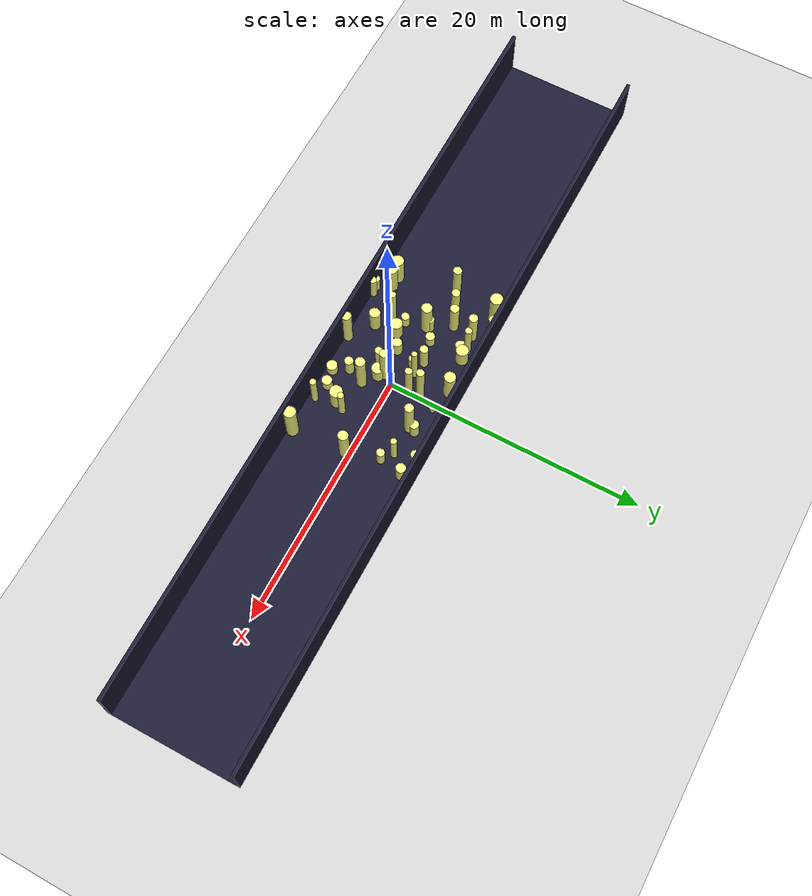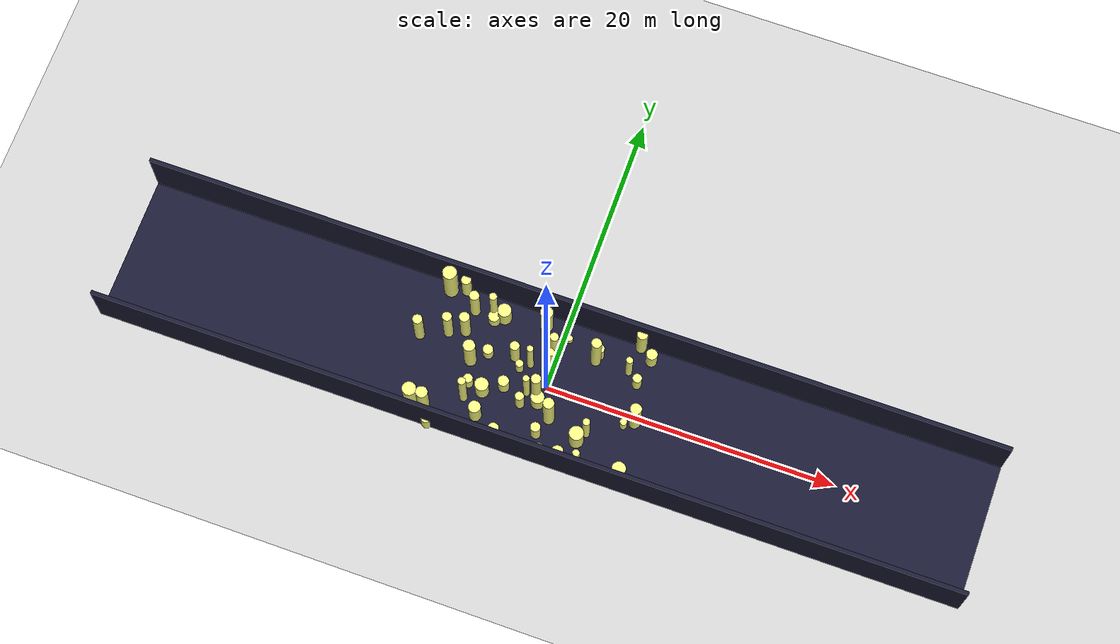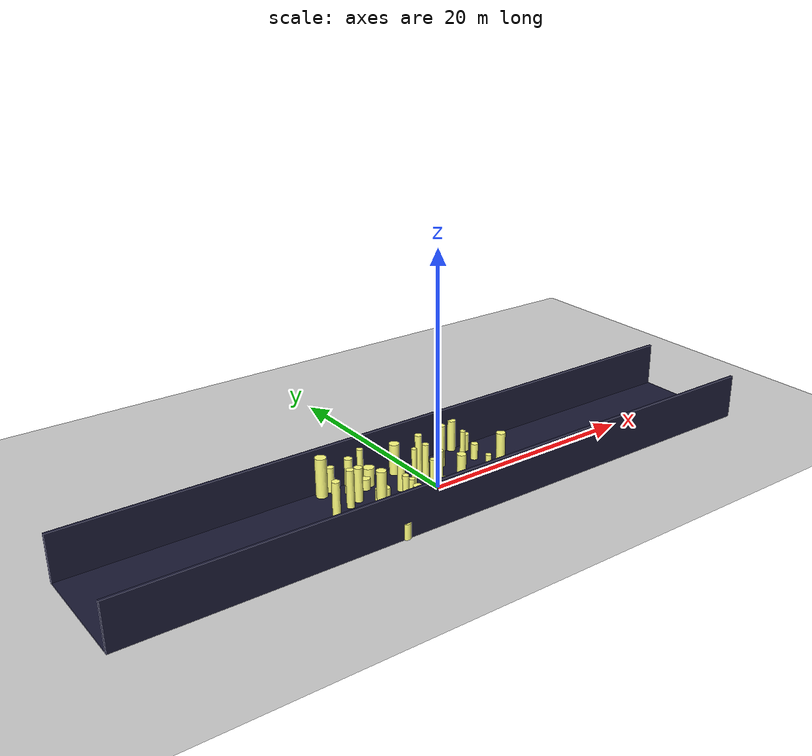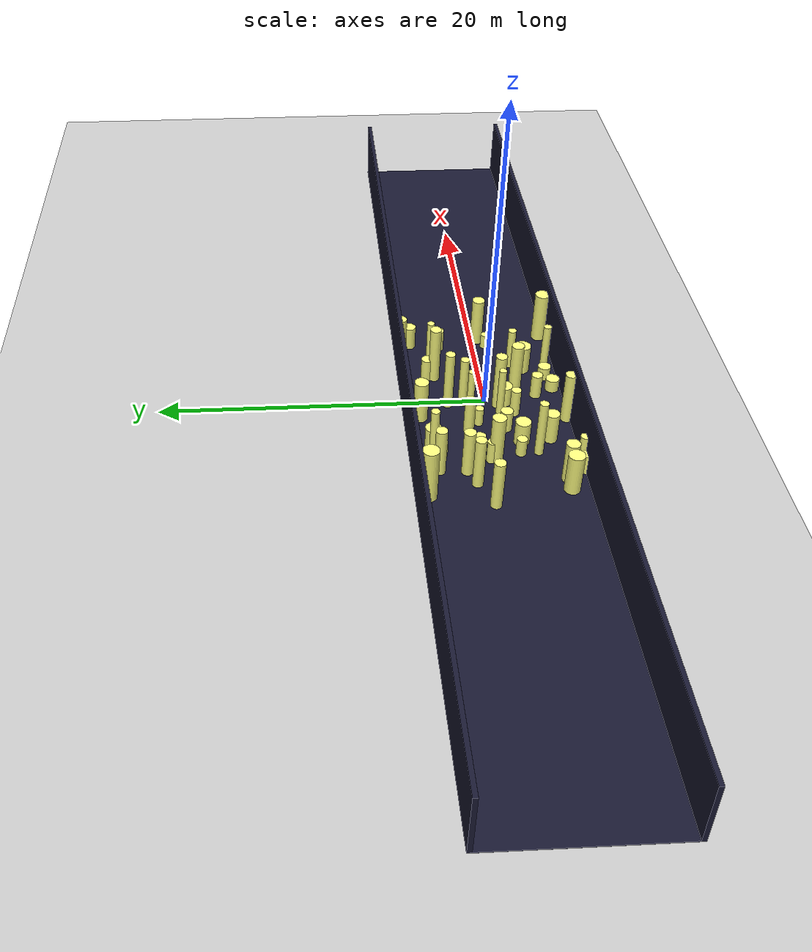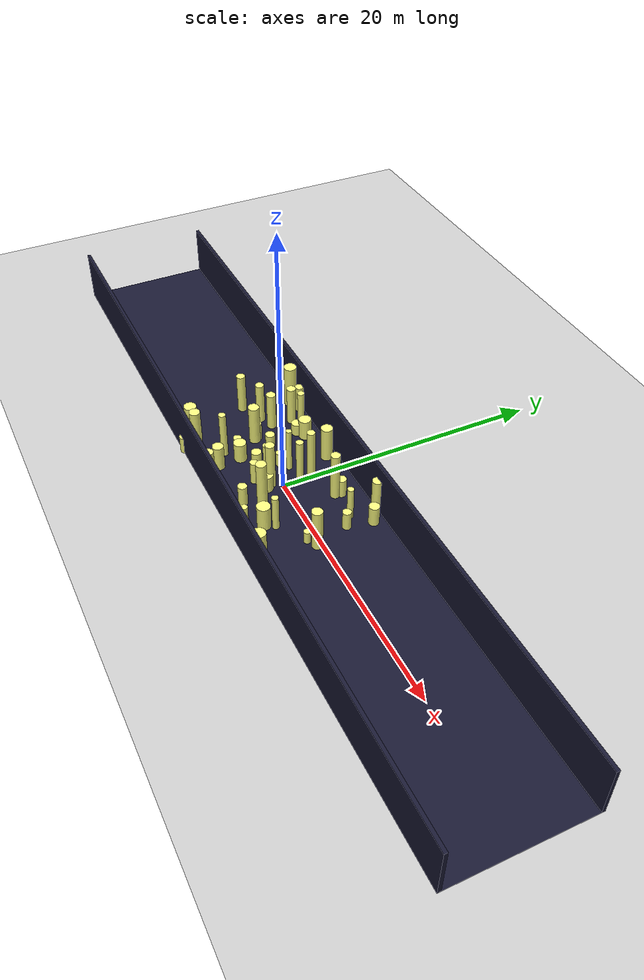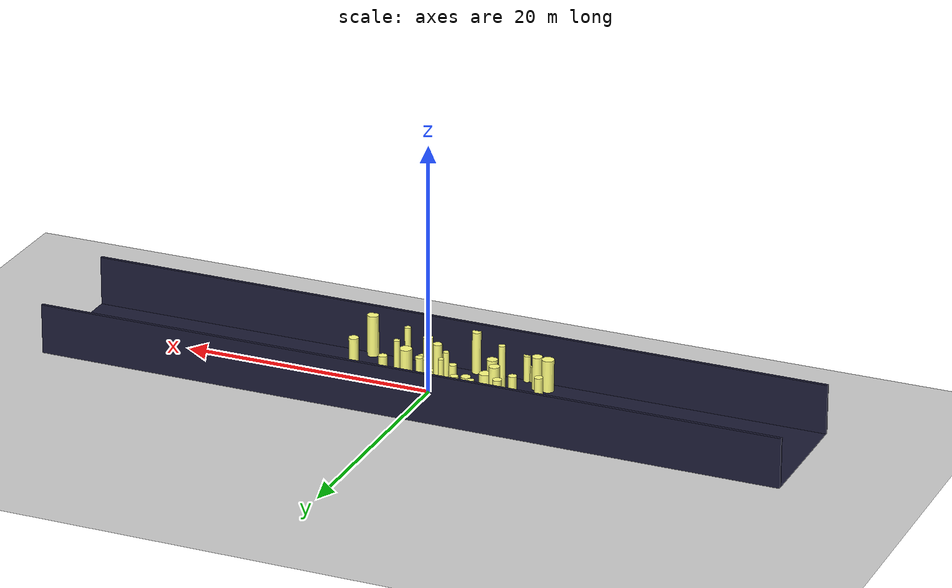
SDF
<sdf version="1.4">
 <world name="default">
  <include><uri>model://ground_plane</uri></include>
  <include><uri>model://sun</uri></include>
  <model name="forest">
   <static>true</static>
   <link name="cylinder0">
    <pose>-0.27596573278064795 2.3027655550596826 1.9662998194130066 0 0 0</pose>
    <visual name="visual">
     <geometry>
      <cylinder><radius>0.29460365191055793</radius><length>3.932599638826013</length></cylinder>
     </geometry>
     <material>
      <ambient>0.6 0.6 0.6 1</ambient>
      <diffuse>1 1 0.5 1</diffuse>
      <specular>0 0 0</specular>
      <emissive>0 0 0 1</emissive>
     </material>
    </visual>
    <collision name="collision">
     <geometry>
      <cylinder><radius>0.29460365191055793</radius><length>3.932599638826013</length></cylinder>
     </geometry>
     <max_contacts>0</max_contacts>
    </collision>
   </link>
   <link name="cylinder3">
    <pose>0.8533443847754789 -1.9828326244018832 1.7870015804718422 0 0 0</pose>
    <visual name="visual">
     <geometry>
      <cylinder><radius>0.378790075126895</radius><length>3.5740031609436844</length></cylinder>
     </geometry>
     <material>
      <ambient>0.6 0.6 0.6 1</ambient>
      <diffuse>1 1 0.5 1</diffuse>
      <specular>0 0 0</specular>
      <emissive>0 0 0 1</emissive>
     </material>
    </visual>
    <collision name="collision">
     <geometry>
      <cylinder><radius>0.378790075126895</radius><length>3.5740031609436844</length></cylinder>
     </geometry>
     <max_contacts>0</max_contacts>
    </collision>
   </link>
   <link name="cylinder14">
    <pose>0.3872426090972496 -3.2432841573307405 0.8264207578981477 0 0 0</pose>
    <visual name="visual">
     <geometry>
      <cylinder><radius>0.3385856604099834</radius><length>1.6528415157962955</length></cylinder>
     </geometry>
     <material>
      <ambient>0.6 0.6 0.6 1</ambient>
      <diffuse>1 1 0.5 1</diffuse>
      <specular>0 0 0</specular>
      <emissive>0 0 0 1</emissive>
     </material>
    </visual>
    <collision name="collision">
     <geometry>
      <cylinder><radius>0.3385856604099834</radius><length>1.6528415157962955</length></cylinder>
     </geometry>
     <max_contacts>0</max_contacts>
    </collision>
   </link>
   <link name="cylinder15">
    <pose>3.587341926778624 -4.363118269159628 1.4793409929411214 0 0 0</pose>
    <visual name="visual">
     <geometry>
      <cylinder><radius>0.24105849808572682</radius><length>2.958681985882243</length></cylinder>
     </geometry>
     <material>
      <ambient>0.6 0.6 0.6 1</ambient>
      <diffuse>1 1 0.5 1</diffuse>
      <specular>0 0 0</specular>
      <emissive>0 0 0 1</emissive>
     </material>
    </visual>
    <collision name="collision">
     <geometry>
      <cylinder><radius>0.24105849808572682</radius><length>2.958681985882243</length></cylinder>
     </geometry>
     <max_contacts>0</max_contacts>
    </collision>
   </link>
   <link name="cylinder20">
    <pose>-6.313498661550838 3.49514028535104 1.575735215364361 0 0 0</pose>
    <visual name="visual">
     <geometry>
      <cylinder><radius>0.3395512921505083</radius><length>3.151470430728722</length></cylinder>
     </geometry>
     <material>
      <ambient>0.6 0.6 0.6 1</ambient>
      <diffuse>1 1 0.5 1</diffuse>
      <specular>0 0 0</specular>
      <emissive>0 0 0 1</emissive>
     </material>
    </visual>
    <collision name="collision">
     <geometry>
      <cylinder><radius>0.3395512921505083</radius><length>3.151470430728722</length></cylinder>
     </geometry>
     <max_contacts>0</max_contacts>
    </collision>
   </link>
   <link name="cylinder22">
    <pose>-5.431169609507229 0.10766228422718438 1.596106110423506 0 0 0</pose>
    <visual name="visual">
     <geometry>
      <cylinder><radius>0.4094059961450005</radius><length>3.192212220847012</length></cylinder>
     </geometry>
     <material>
      <ambient>0.6 0.6 0.6 1</ambient>
      <diffuse>1 1 0.5 1</diffuse>
      <specular>0 0 0</specular>
      <emissive>0 0 0 1</emissive>
     </material>
    </visual>
    <collision name="collision">
     <geometry>
      <cylinder><radius>0.4094059961450005</radius><length>3.192212220847012</length></cylinder>
     </geometry>
     <max_contacts>0</max_contacts>
    </collision>
   </link>
   <link name="cylinder24">
    <pose>3.5151456912194554 -2.1303041103750955 1.3997497912851216 0 0 0</pose>
    <visual name="visual">
     <geometry>
      <cylinder><radius>0.24697764225073554</radius><length>2.799499582570243</length></cylinder>
     </geometry>
     <material>
      <ambient>0.6 0.6 0.6 1</ambient>
      <diffuse>1 1 0.5 1</diffuse>
      <specular>0 0 0</specular>
      <emissive>0 0 0 1</emissive>
     </material>
    </visual>
    <collision name="collision">
     <geometry>
      <cylinder><radius>0.24697764225073554</radius><length>2.799499582570243</length></cylinder>
     </geometry>
     <max_contacts>0</max_contacts>
    </collision>
   </link>
   <link name="cylinder28">
    <pose>-5.5113321428176825 0.3849030072967752 0.7422895267263347 0 0 0</pose>
    <visual name="visual">
     <geometry>
      <cylinder><radius>0.2962670421375333</radius><length>1.4845790534526695</length></cylinder>
     </geometry>
     <material>
      <ambient>0.6 0.6 0.6 1</ambient>
      <diffuse>1 1 0.5 1</diffuse>
      <specular>0 0 0</specular>
      <emissive>0 0 0 1</emissive>
     </material>
    </visual>
    <collision name="collision">
     <geometry>
      <cylinder><radius>0.2962670421375333</radius><length>1.4845790534526695</length></cylinder>
     </geometry>
     <max_contacts>0</max_contacts>
    </collision>
   </link>
   <link name="cylinder29">
    <pose>4.782275414142273 2.8620519904918442 1.3210972901681837 0 0 0</pose>
    <visual name="visual">
     <geometry>
      <cylinder><radius>0.2303400498323811</radius><length>2.6421945803363673</length></cylinder>
     </geometry>
     <material>
      <ambient>0.6 0.6 0.6 1</ambient>
      <diffuse>1 1 0.5 1</diffuse>
      <specular>0 0 0</specular>
      <emissive>0 0 0 1</emissive>
     </material>
    </visual>
    <collision name="collision">
     <geometry>
      <cylinder><radius>0.2303400498323811</radius><length>2.6421945803363673</length></cylinder>
     </geometry>
     <max_contacts>0</max_contacts>
    </collision>
   </link>
   <link name="cylinder30">
    <pose>-6.090910868536813 -4.7910375395340035 1.0784188501266392 0 0 0</pose>
    <visual name="visual">
     <geometry>
      <cylinder><radius>0.27294622840925337</radius><length>2.1568377002532784</length></cylinder>
     </geometry>
     <material>
      <ambient>0.6 0.6 0.6 1</ambient>
      <diffuse>1 1 0.5 1</diffuse>
      <specular>0 0 0</specular>
      <emissive>0 0 0 1</emissive>
     </material>
    </visual>
    <collision name="collision">
     <geometry>
      <cylinder><radius>0.27294622840925337</radius><length>2.1568377002532784</length></cylinder>
     </geometry>
     <max_contacts>0</max_contacts>
    </collision>
   </link>
   <link name="cylinder31">
    <pose>-4.2766366844724395 3.679652418486711 0.8334056321843029 0 0 0</pose>
    <visual name="visual">
     <geometry>
      <cylinder><radius>0.4705615520282012</radius><length>1.6668112643686057</length></cylinder>
     </geometry>
     <material>
      <ambient>0.6 0.6 0.6 1</ambient>
      <diffuse>1 1 0.5 1</diffuse>
      <specular>0 0 0</specular>
      <emissive>0 0 0 1</emissive>
     </material>
    </visual>
    <collision name="collision">
     <geometry>
      <cylinder><radius>0.4705615520282012</radius><length>1.6668112643686057</length></cylinder>
     </geometry>
     <max_contacts>0</max_contacts>
    </collision>
   </link>
   <link name="cylinder37">
    <pose>2.22098658588315 -4.09902437544424 0.4561334338542336 0 0 0</pose>
    <visual name="visual">
     <geometry>
      <cylinder><radius>0.39335598329948684</radius><length>0.9122668677084672</length></cylinder>
     </geometry>
     <material>
      <ambient>0.6 0.6 0.6 1</ambient>
      <diffuse>1 1 0.5 1</diffuse>
      <specular>0 0 0</specular>
      <emissive>0 0 0 1</emissive>
     </material>
    </visual>
    <collision name="collision">
     <geometry>
      <cylinder><radius>0.39335598329948684</radius><length>0.9122668677084672</length></cylinder>
     </geometry>
     <max_contacts>0</max_contacts>
    </collision>
   </link>
   <link name="cylinder38">
    <pose>-1.9714821560423879 -4.702370178172775 1.7159752581711314 0 0 0</pose>
    <visual name="visual">
     <geometry>
      <cylinder><radius>0.3573550583101269</radius><length>3.431950516342263</length></cylinder>
     </geometry>
     <material>
      <ambient>0.6 0.6 0.6 1</ambient>
      <diffuse>1 1 0.5 1</diffuse>
      <specular>0 0 0</specular>
      <emissive>0 0 0 1</emissive>
     </material>
    </visual>
    <collision name="collision">
     <geometry>
      <cylinder><radius>0.3573550583101269</radius><length>3.431950516342263</length></cylinder>
     </geometry>
     <max_contacts>0</max_contacts>
    </collision>
   </link>
   <link name="cylinder40">
    <pose>-3.8046622959511396 -3.3842398450957125 1.008785948485795 0 0 0</pose>
    <visual name="visual">
     <geometry><cylinder><radius>0.4147580997780579</radius><length>2.01757189697159</length></cylinder></geometry>
     <material>
      <ambient>0.6 0.6 0.6 1</ambient>
      <diffuse>1 1 0.5 1</diffuse>
      <specular>0 0 0</specular>
      <emissive>0 0 0 1</emissive>
     </material>
    </visual>
    <collision name="collision">
     <geometry><cylinder><radius>0.4147580997780579</radius><length>2.01757189697159</length></cylinder></geometry>
     <max_contacts>0</max_contacts>
    </collision>
   </link>
   <link name="cylinder42">
    <pose>-4.963759250998667 -2.4985493442247964 1.8681536193753285 0 0 0</pose>
    <visual name="visual">
     <geometry>
      <cylinder><radius>0.2618273209065501</radius><length>3.736307238750657</length></cylinder>
     </geometry>
     <material>
      <ambient>0.6 0.6 0.6 1</ambient>
      <diffuse>1 1 0.5 1</diffuse>
      <specular>0 0 0</specular>
      <emissive>0 0 0 1</emissive>
     </material>
    </visual>
    <collision name="collision">
     <geometry>
      <cylinder><radius>0.2618273209065501</radius><length>3.736307238750657</length></cylinder>
     </geometry>
     <max_contacts>0</max_contacts>
    </collision>
   </link>
   <link name="cylinder46">
    <pose>-7.345873493882234 4.64371863540881 1.11434148683003 0 0 0</pose>
    <visual name="visual">
     <geometry>
      <cylinder><radius>0.32942431847453313</radius><length>2.22868297366006</length></cylinder>
     </geometry>
     <material>
      <ambient>0.6 0.6 0.6 1</ambient>
      <diffuse>1 1 0.5 1</diffuse>
      <specular>0 0 0</specular>
      <emissive>0 0 0 1</emissive>
     </material>
    </visual>
    <collision name="collision">
     <geometry>
      <cylinder><radius>0.32942431847453313</radius><length>2.22868297366006</length></cylinder>
     </geometry>
     <max_contacts>0</max_contacts>
    </collision>
   </link>
   <link name="cylinder47">
    <pose>-5.061527315618932 3.721935583270472 1.7645251837878395 0 0 0</pose>
    <visual name="visual">
     <geometry>
      <cylinder><radius>0.25947089892545744</radius><length>3.529050367575679</length></cylinder>
     </geometry>
     <material>
      <ambient>0.6 0.6 0.6 1</ambient>
      <diffuse>1 1 0.5 1</diffuse>
      <specular>0 0 0</specular>
      <emissive>0 0 0 1</emissive>
     </material>
    </visual>
    <collision name="collision">
     <geometry>
      <cylinder><radius>0.25947089892545744</radius><length>3.529050367575679</length></cylinder>
     </geometry>
     <max_contacts>0</max_contacts>
    </collision>
   </link>
   <link name="cylinder48">
    <pose>-1.5438663993116926 1.1455206450608069 1.765208912737388 0 0 0</pose>
    <visual name="visual">
     <geometry>
      <cylinder><radius>0.21610772324643698</radius><length>3.530417825474776</length></cylinder>
     </geometry>
     <material>
      <ambient>0.6 0.6 0.6 1</ambient>
      <diffuse>1 1 0.5 1</diffuse>
      <specular>0 0 0</specular>
      <emissive>0 0 0 1</emissive>
     </material>
    </visual>
    <collision name="collision">
     <geometry>
      <cylinder><radius>0.21610772324643698</radius><length>3.530417825474776</length></cylinder>
     </geometry>
     <max_contacts>0</max_contacts>
    </collision>
   </link>
   <link name="cylinder53">
    <pose>2.458573111755623 2.858596809954129 1.905493079966019 0 0 0</pose>
    <visual name="visual">
     <geometry>
      <cylinder><radius>0.3431759765896152</radius><length>3.810986159932038</length></cylinder>
     </geometry>
     <material>
      <ambient>0.6 0.6 0.6 1</ambient>
      <diffuse>1 1 0.5 1</diffuse>
      <specular>0 0 0</specular>
      <emissive>0 0 0 1</emissive>
     </material>
    </visual>
    <collision name="collision">
     <geometry>
      <cylinder><radius>0.3431759765896152</radius><length>3.810986159932038</length></cylinder>
     </geometry>
     <max_contacts>0</max_contacts>
    </collision>
   </link>
   <link name="cylinder54">
    <pose>-1.1322312315374674 -0.7774165853125847 1.61868622134119 0 0 0</pose>
    <visual name="visual">
     <geometry>
      <cylinder><radius>0.22260666752828723</radius><length>3.23737244268238</length></cylinder>
     </geometry>
     <material>
      <ambient>0.6 0.6 0.6 1</ambient>
      <diffuse>1 1 0.5 1</diffuse>
      <specular>0 0 0</specular>
      <emissive>0 0 0 1</emissive>
     </material>
    </visual>
    <collision name="collision">
     <geometry>
      <cylinder><radius>0.22260666752828723</radius><length>3.23737244268238</length></cylinder>
     </geometry>
     <max_contacts>0</max_contacts>
    </collision>
   </link>
   <link name="cylinder60">
    <pose>-2.13574960165392 0.6489998864208255 0.6147141040556956 0 0 0</pose>
    <visual name="visual">
     <geometry>
      <cylinder><radius>0.2612646601849798</radius><length>1.2294282081113912</length></cylinder>
     </geometry>
     <material>
      <ambient>0.6 0.6 0.6 1</ambient>
      <diffuse>1 1 0.5 1</diffuse>
      <specular>0 0 0</specular>
      <emissive>0 0 0 1</emissive>
     </material>
    </visual>
    <collision name="collision">
     <geometry>
      <cylinder><radius>0.2612646601849798</radius><length>1.2294282081113912</length></cylinder>
     </geometry>
     <max_contacts>0</max_contacts>
    </collision>
   </link>
   <link name="cylinder66">
    <pose>6.300298029350081 -0.35288475581692325 1.6382654152754557 0 0 0</pose>
    <visual name="visual">
     <geometry>
      <cylinder><radius>0.3880360546565045</radius><length>3.2765308305509113</length></cylinder>
     </geometry>
     <material>
      <ambient>0.6 0.6 0.6 1</ambient>
      <diffuse>1 1 0.5 1</diffuse>
      <specular>0 0 0</specular>
      <emissive>0 0 0 1</emissive>
     </material>
    </visual>
    <collision name="collision">
     <geometry>
      <cylinder><radius>0.3880360546565045</radius><length>3.2765308305509113</length></cylinder>
     </geometry>
     <max_contacts>0</max_contacts>
    </collision>
   </link>
   <link name="cylinder67">
    <pose>-7.4750456176180045 1.4526662061058806 1.6752258363979022 0 0 0</pose>
    <visual name="visual">
     <geometry>
      <cylinder><radius>0.32205068304329376</radius><length>3.3504516727958045</length></cylinder>
     </geometry>
     <material>
      <ambient>0.6 0.6 0.6 1</ambient>
      <diffuse>1 1 0.5 1</diffuse>
      <specular>0 0 0</specular>
      <emissive>0 0 0 1</emissive>
     </material>
    </visual>
    <collision name="collision">
     <geometry>
      <cylinder><radius>0.32205068304329376</radius><length>3.3504516727958045</length></cylinder>
     </geometry>
     <max_contacts>0</max_contacts>
    </collision>
   </link>
   <link name="cylinder68">
    <pose>0.35767220703646885 3.6495828602255713 0.26606501257144244 0 0 0</pose>
    <visual name="visual">
     <geometry>
      <cylinder><radius>0.2071041925124434</radius><length>0.5321300251428849</length></cylinder>
     </geometry>
     <material>
      <ambient>0.6 0.6 0.6 1</ambient>
      <diffuse>1 1 0.5 1</diffuse>
      <specular>0 0 0</specular>
      <emissive>0 0 0 1</emissive>
     </material>
    </visual>
    <collision name="collision">
     <geometry>
      <cylinder><radius>0.2071041925124434</radius><length>0.5321300251428849</length></cylinder>
     </geometry>
     <max_contacts>0</max_contacts>
    </collision>
   </link>
   <link name="cylinder70">
    <pose>5.574126839162247 2.2110773269115347 0.7447027103875199 0 0 0</pose>
    <visual name="visual">
     <geometry>
      <cylinder><radius>0.31297148115333306</radius><length>1.4894054207750398</length></cylinder>
     </geometry>
     <material>
      <ambient>0.6 0.6 0.6 1</ambient>
      <diffuse>1 1 0.5 1</diffuse>
      <specular>0 0 0</specular>
      <emissive>0 0 0 1</emissive>
     </material>
    </visual>
    <collision name="collision">
     <geometry>
      <cylinder><radius>0.31297148115333306</radius><length>1.4894054207750398</length></cylinder>
     </geometry>
     <max_contacts>0</max_contacts>
    </collision>
   </link>
   <link name="cylinder77">
    <pose>-4.464929170977978 0.9323823054205418 0.5276109700520135 0 0 0</pose>
    <visual name="visual">
     <geometry>
      <cylinder><radius>0.3533236156454911</radius><length>1.055221940104027</length></cylinder>
     </geometry>
     <material>
      <ambient>0.6 0.6 0.6 1</ambient>
      <diffuse>1 1 0.5 1</diffuse>
      <specular>0 0 0</specular>
      <emissive>0 0 0 1</emissive>
     </material>
    </visual>
    <collision name="collision">
     <geometry>
      <cylinder><radius>0.3533236156454911</radius><length>1.055221940104027</length></cylinder>
     </geometry>
     <max_contacts>0</max_contacts>
    </collision>
   </link>
   <link name="cylinder78">
    <pose>-0.20533003677898165 -1.1814267811994208 0.684106556259121 0 0 0</pose>
    <visual name="visual">
     <geometry>
      <cylinder><radius>0.4601759545316737</radius><length>1.368213112518242</length></cylinder>
     </geometry>
     <material>
      <ambient>0.6 0.6 0.6 1</ambient>
      <diffuse>1 1 0.5 1</diffuse>
      <specular>0 0 0</specular>
      <emissive>0 0 0 1</emissive>
     </material>
    </visual>
    <collision name="collision">
     <geometry>
      <cylinder><radius>0.4601759545316737</radius><length>1.368213112518242</length></cylinder>
     </geometry>
     <max_contacts>0</max_contacts>
    </collision>
   </link>
   <link name="cylinder79">
    <pose>3.073393834711819 -2.807903192274913 0.9597380945188719 0 0 0</pose>
    <visual name="visual">
     <geometry>
      <cylinder><radius>0.4928499738267403</radius><length>1.9194761890377439</length></cylinder>
     </geometry>
     <material>
      <ambient>0.6 0.6 0.6 1</ambient>
      <diffuse>1 1 0.5 1</diffuse>
      <specular>0 0 0</specular>
      <emissive>0 0 0 1</emissive>
     </material>
    </visual>
    <collision name="collision">
     <geometry>
      <cylinder><radius>0.4928499738267403</radius><length>1.9194761890377439</length></cylinder>
     </geometry>
     <max_contacts>0</max_contacts>
    </collision>
   </link>
   <link name="cylinder81">
    <pose>-2.6949021425784494 -0.9011427375102175 0.7180258042294225 0 0 0</pose>
    <visual name="visual">
     <geometry>
      <cylinder><radius>0.3764301452823545</radius><length>1.436051608458845</length></cylinder>
     </geometry>
     <material>
      <ambient>0.6 0.6 0.6 1</ambient>
      <diffuse>1 1 0.5 1</diffuse>
      <specular>0 0 0</specular>
      <emissive>0 0 0 1</emissive>
     </material>
    </visual>
    <collision name="collision">
     <geometry>
      <cylinder><radius>0.3764301452823545</radius><length>1.436051608458845</length></cylinder>
     </geometry>
     <max_contacts>0</max_contacts>
    </collision>
   </link>
   <link name="cylinder82">
    <pose>0.9794319723424216 -4.381177435413083 0.440281481964797 0 0 0</pose>
    <visual name="visual">
     <geometry>
      <cylinder><radius>0.4172308269165237</radius><length>0.880562963929594</length></cylinder>
     </geometry>
     <material>
      <ambient>0.6 0.6 0.6 1</ambient>
      <diffuse>1 1 0.5 1</diffuse>
      <specular>0 0 0</specular>
      <emissive>0 0 0 1</emissive>
     </material>
    </visual>
    <collision name="collision">
     <geometry>
      <cylinder><radius>0.4172308269165237</radius><length>0.880562963929594</length></cylinder>
     </geometry>
     <max_contacts>0</max_contacts>
    </collision>
   </link>
   <link name="cylinder93">
    <pose>-6.421832280969923 1.904339820848831 1.5206319549675336 0 0 0</pose>
    <visual name="visual">
     <geometry>
      <cylinder><radius>0.3492158327603912</radius><length>3.041263909935067</length></cylinder>
     </geometry>
     <material>
      <ambient>0.6 0.6 0.6 1</ambient>
      <diffuse>1 1 0.5 1</diffuse>
      <specular>0 0 0</specular>
      <emissive>0 0 0 1</emissive>
     </material>
    </visual>
    <collision name="collision">
     <geometry>
      <cylinder><radius>0.3492158327603912</radius><length>3.041263909935067</length></cylinder>
     </geometry>
     <max_contacts>0</max_contacts>
    </collision>
   </link>
   <link name="cylinder94">
    <pose>-1.4467156133626808 4.102352517962988 1.402802430057953 0 0 0</pose>
    <visual name="visual">
     <geometry>
      <cylinder><radius>0.4337722291704366</radius><length>2.805604860115906</length></cylinder>
     </geometry>
     <material>
      <ambient>0.6 0.6 0.6 1</ambient>
      <diffuse>1 1 0.5 1</diffuse>
      <specular>0 0 0</specular>
      <emissive>0 0 0 1</emissive>
     </material>
    </visual>
    <collision name="collision">
     <geometry>
      <cylinder><radius>0.4337722291704366</radius><length>2.805604860115906</length></cylinder>
     </geometry>
     <max_contacts>0</max_contacts>
    </collision>
   </link>
   <link name="cylinder96">
    <pose>5.959971723146772 4.0727285280356895 0.7951254944534036 0 0 0</pose>
    <visual name="visual">
     <geometry>
      <cylinder><radius>0.380986256012672</radius><length>1.5902509889068073</length></cylinder>
     </geometry>
     <material>
      <ambient>0.6 0.6 0.6 1</ambient>
      <diffuse>1 1 0.5 1</diffuse>
      <specular>0 0 0</specular>
      <emissive>0 0 0 1</emissive>
     </material>
    </visual>
    <collision name="collision">
     <geometry>
      <cylinder><radius>0.380986256012672</radius><length>1.5902509889068073</length></cylinder>
     </geometry>
     <max_contacts>0</max_contacts>
    </collision>
   </link>
   <link name="cylinder97">
    <pose>2.5346416959588822 3.3178307788532386 0.7591944391900312 0 0 0</pose>
    <visual name="visual">
     <geometry>
      <cylinder><radius>0.3486552625594238</radius><length>1.5183888783800623</length></cylinder>
     </geometry>
     <material>
      <ambient>0.6 0.6 0.6 1</ambient>
      <diffuse>1 1 0.5 1</diffuse>
      <specular>0 0 0</specular>
      <emissive>0 0 0 1</emissive>
     </material>
    </visual>
    <collision name="collision">
     <geometry>
      <cylinder><radius>0.3486552625594238</radius><length>1.5183888783800623</length></cylinder>
     </geometry>
     <max_contacts>0</max_contacts>
    </collision>
   </link>
   <link name="cylinder102">
    <pose>-4.876329245391382 3.2602933049727376 0.5136819146626024 0 0 0</pose>
    <visual name="visual">
     <geometry>
      <cylinder><radius>0.39487597385749923</radius><length>1.0273638293252048</length></cylinder>
     </geometry>
     <material>
      <ambient>0.6 0.6 0.6 1</ambient>
      <diffuse>1 1 0.5 1</diffuse>
      <specular>0 0 0</specular>
      <emissive>0 0 0 1</emissive>
     </material>
    </visual>
    <collision name="collision">
     <geometry>
      <cylinder><radius>0.39487597385749923</radius><length>1.0273638293252048</length></cylinder>
     </geometry>
     <max_contacts>0</max_contacts>
    </collision>
   </link>
   <link name="cylinder108">
    <pose>-0.20320398357283054 1.3882775579714801 1.7191931434467222 0 0 0</pose>
    <visual name="visual">
     <geometry>
      <cylinder><radius>0.27247559818955647</radius><length>3.4383862868934445</length></cylinder>
     </geometry>
     <material>
      <ambient>0.6 0.6 0.6 1</ambient>
      <diffuse>1 1 0.5 1</diffuse>
      <specular>0 0 0</specular>
      <emissive>0 0 0 1</emissive>
     </material>
    </visual>
    <collision name="collision">
     <geometry>
      <cylinder><radius>0.27247559818955647</radius><length>3.4383862868934445</length></cylinder>
     </geometry>
     <max_contacts>0</max_contacts>
    </collision>
   </link>
   <link name="cylinder113">
    <pose>-6.6512983130535055 -4.937174678788136 0.6616357245952631 0 0 0</pose>
    <visual name="visual">
     <geometry>
      <cylinder><radius>0.36789394797205793</radius><length>1.3232714491905262</length></cylinder>
     </geometry>
     <material>
      <ambient>0.6 0.6 0.6 1</ambient>
      <diffuse>1 1 0.5 1</diffuse>
      <specular>0 0 0</specular>
      <emissive>0 0 0 1</emissive>
     </material>
    </visual>
    <collision name="collision">
     <geometry>
      <cylinder><radius>0.36789394797205793</radius><length>1.3232714491905262</length></cylinder>
     </geometry>
     <max_contacts>0</max_contacts>
    </collision>
   </link>
   <link name="cylinder116">
    <pose>-2.7010602217929787 1.3321774467599088 1.2055936761652877 0 0 0</pose>
    <visual name="visual">
     <geometry>
      <cylinder><radius>0.3218759990839758</radius><length>2.4111873523305754</length></cylinder>
     </geometry>
     <material>
      <ambient>0.6 0.6 0.6 1</ambient>
      <diffuse>1 1 0.5 1</diffuse>
      <specular>0 0 0</specular>
      <emissive>0 0 0 1</emissive>
     </material>
    </visual>
    <collision name="collision">
     <geometry>
      <cylinder><radius>0.3218759990839758</radius><length>2.4111873523305754</length></cylinder>
     </geometry>
     <max_contacts>0</max_contacts>
    </collision>
   </link>
   <link name="cylinder118">
    <pose>-3.955854165925654 -1.6533701475558358 0.8047253376440907 0 0 0</pose>
    <visual name="visual">
     <geometry>
      <cylinder><radius>0.46908089838993666</radius><length>1.6094506752881814</length></cylinder>
     </geometry>
     <material>
      <ambient>0.6 0.6 0.6 1</ambient>
      <diffuse>1 1 0.5 1</diffuse>
      <specular>0 0 0</specular>
      <emissive>0 0 0 1</emissive>
     </material>
    </visual>
    <collision name="collision">
     <geometry>
      <cylinder><radius>0.46908089838993666</radius><length>1.6094506752881814</length></cylinder>
     </geometry>
     <max_contacts>0</max_contacts>
    </collision>
   </link>
   <link name="cylinder119">
    <pose>-8.188036251541497 -3.817979359215621 1.3103191991513643 0 0 0</pose>
    <visual name="visual">
     <geometry>
      <cylinder><radius>0.4759550984937448</radius><length>2.6206383983027286</length></cylinder>
     </geometry>
     <material>
      <ambient>0.6 0.6 0.6 1</ambient>
      <diffuse>1 1 0.5 1</diffuse>
      <specular>0 0 0</specular>
      <emissive>0 0 0 1</emissive>
     </material>
    </visual>
    <collision name="collision">
     <geometry>
      <cylinder><radius>0.4759550984937448</radius><length>2.6206383983027286</length></cylinder>
     </geometry>
     <max_contacts>0</max_contacts>
    </collision>
   </link>
   <link name="cylinder120">
    <pose>-7.317132745200709 -3.792949786626685 1.355027259228058 0 0 0</pose>
    <visual name="visual">
     <geometry><cylinder><radius>0.402990476792549</radius><length>2.710054518456116</length></cylinder></geometry>
     <material>
      <ambient>0.6 0.6 0.6 1</ambient>
      <diffuse>1 1 0.5 1</diffuse>
      <specular>0 0 0</specular>
      <emissive>0 0 0 1</emissive>
     </material>
    </visual>
    <collision name="collision">
     <geometry><cylinder><radius>0.402990476792549</radius><length>2.710054518456116</length></cylinder></geometry>
     <max_contacts>0</max_contacts>
    </collision>
   </link>
   <link name="cylinder130">
    <pose>-9.254398361874722 0.6704895347269888 1.610703955668252 0 0 0</pose>
    <visual name="visual">
     <geometry>
      <cylinder><radius>0.3320934720388215</radius><length>3.221407911336504</length></cylinder>
     </geometry>
     <material>
      <ambient>0.6 0.6 0.6 1</ambient>
      <diffuse>1 1 0.5 1</diffuse>
      <specular>0 0 0</specular>
      <emissive>0 0 0 1</emissive>
     </material>
    </visual>
    <collision name="collision">
     <geometry>
      <cylinder><radius>0.3320934720388215</radius><length>3.221407911336504</length></cylinder>
     </geometry>
     <max_contacts>0</max_contacts>
    </collision>
   </link>
   <link name="cylinder134">
    <pose>-4.991888635946811 -1.440313777639041 0.5921987869990618 0 0 0</pose>
    <visual name="visual">
     <geometry>
      <cylinder><radius>0.3153139026965055</radius><length>1.1843975739981236</length></cylinder>
     </geometry>
     <material>
      <ambient>0.6 0.6 0.6 1</ambient>
      <diffuse>1 1 0.5 1</diffuse>
      <specular>0 0 0</specular>
      <emissive>0 0 0 1</emissive>
     </material>
    </visual>
    <collision name="collision">
     <geometry>
      <cylinder><radius>0.3153139026965055</radius><length>1.1843975739981236</length></cylinder>
     </geometry>
     <max_contacts>0</max_contacts>
    </collision>
   </link>
   <link name="cylinder135">
    <pose>-0.4528127453605464 -0.7566797337952833 1.8902565552873334 0 0 0</pose>
    <visual name="visual">
     <geometry>
      <cylinder><radius>0.3410631825809377</radius><length>3.7805131105746668</length></cylinder>
     </geometry>
     <material>
      <ambient>0.6 0.6 0.6 1</ambient>
      <diffuse>1 1 0.5 1</diffuse>
      <specular>0 0 0</specular>
      <emissive>0 0 0 1</emissive>
     </material>
    </visual>
    <collision name="collision">
     <geometry>
      <cylinder><radius>0.3410631825809377</radius><length>3.7805131105746668</length></cylinder>
     </geometry>
     <max_contacts>0</max_contacts>
    </collision>
   </link>
   <link name="cylinder140">
    <pose>5.025964974886627 4.746068617976309 1.4334421445880174 0 0 0</pose>
    <visual name="visual">
     <geometry>
      <cylinder><radius>0.35694954847004995</radius><length>2.866884289176035</length></cylinder>
     </geometry>
     <material>
      <ambient>0.6 0.6 0.6 1</ambient>
      <diffuse>1 1 0.5 1</diffuse>
      <specular>0 0 0</specular>
      <emissive>0 0 0 1</emissive>
     </material>
    </visual>
    <collision name="collision">
     <geometry>
      <cylinder><radius>0.35694954847004995</radius><length>2.866884289176035</length></cylinder>
     </geometry>
     <max_contacts>0</max_contacts>
    </collision>
   </link>
   <link name="cylinder141">
    <pose>5.660017852902914 -0.7891580256273283 0.5110132822110446 0 0 0</pose>
    <visual name="visual">
     <geometry>
      <cylinder><radius>0.2390690217975223</radius><length>1.0220265644220892</length></cylinder>
     </geometry>
     <material>
      <ambient>0.6 0.6 0.6 1</ambient>
      <diffuse>1 1 0.5 1</diffuse>
      <specular>0 0 0</specular>
      <emissive>0 0 0 1</emissive>
     </material>
    </visual>
    <collision name="collision">
     <geometry>
      <cylinder><radius>0.2390690217975223</radius><length>1.0220265644220892</length></cylinder>
     </geometry>
     <max_contacts>0</max_contacts>
    </collision>
   </link>
   <link name="cylinder142">
    <pose>-8.351379570967872 4.344632672739051 1.7523340911181562 0 0 0</pose>
    <visual name="visual">
     <geometry>
      <cylinder><radius>0.48325551699206765</radius><length>3.5046681822363124</length></cylinder>
     </geometry>
     <material>
      <ambient>0.6 0.6 0.6 1</ambient>
      <diffuse>1 1 0.5 1</diffuse>
      <specular>0 0 0</specular>
      <emissive>0 0 0 1</emissive>
     </material>
    </visual>
    <collision name="collision">
     <geometry>
      <cylinder><radius>0.48325551699206765</radius><length>3.5046681822363124</length></cylinder>
     </geometry>
     <max_contacts>0</max_contacts>
    </collision>
   </link>
   <link name="cylinder143">
    <pose>6.560199547206981 -4.534994942495531 1.699940250791563 0 0 0</pose>
    <visual name="visual">
     <geometry>
      <cylinder><radius>0.4594532128695059</radius><length>3.399880501583126</length></cylinder>
     </geometry>
     <material>
      <ambient>0.6 0.6 0.6 1</ambient>
      <diffuse>1 1 0.5 1</diffuse>
      <specular>0 0 0</specular>
      <emissive>0 0 0 1</emissive>
     </material>
    </visual>
    <collision name="collision">
     <geometry>
      <cylinder><radius>0.4594532128695059</radius><length>3.399880501583126</length></cylinder>
     </geometry>
     <max_contacts>0</max_contacts>
    </collision>
   </link>
   <link name="cylinder147">
    <pose>-1.2964439783064492 -1.6573335281685173 0.92735483571683 0 0 0</pose>
    <visual name="visual">
     <geometry>
      <cylinder><radius>0.30177130759064325</radius><length>1.85470967143366</length></cylinder>
     </geometry>
     <material>
      <ambient>0.6 0.6 0.6 1</ambient>
      <diffuse>1 1 0.5 1</diffuse>
      <specular>0 0 0</specular>
      <emissive>0 0 0 1</emissive>
     </material>
    </visual>
    <collision name="collision">
     <geometry>
      <cylinder><radius>0.30177130759064325</radius><length>1.85470967143366</length></cylinder>
     </geometry>
     <max_contacts>0</max_contacts>
    </collision>
   </link>
   <link name="cube0">
    <pose>0 5.0 2.0 0 0 0</pose>
    <visual name="visual">
     <geometry><box><size>60.0 0.25 4.0</size></box></geometry>
     <material>
      <ambient>0.1 0.1 0.1 1</ambient>
      <diffuse>0.1 0.1 0.2 1</diffuse>
      <specular>0 0 0</specular>
      <emissive>0 0 0 1</emissive>
     </material>
    </visual>
    <collision name="collision">
     <geometry><box><size>60.0 0.25 4.0</size></box></geometry>
     <max_contacts>0</max_contacts>
    </collision>
   </link>
   <link name="cube1">
    <pose>0 -5.0 2.0 0 0 0</pose>
    <visual name="visual">
     <geometry><box><size>60.0 0.25 4.0</size></box></geometry>
     <material>
      <ambient>0.1 0.1 0.1 1</ambient>
      <diffuse>0.1 0.1 0.2 1</diffuse>
      <specular>0 0 0</specular>
      <emissive>0 0 0 1</emissive>
     </material>
    </visual>
    <collision name="collision">
     <geometry><box><size>60.0 0.25 4.0</size></box></geometry>
     <max_contacts>0</max_contacts>
    </collision>
   </link>
   <link name="cube2">
    <pose>0 0 0.03125 0 0 0</pose>
    <visual name="visual">
     <geometry><box><size>60.0 10 0.0625</size></box></geometry>
     <material>
      <ambient>0.1 0.1 0.1 1</ambient>
      <diffuse>0.1 0.1 0.2 1</diffuse>
      <specular>0 0 0</specular>
      <emissive>0 0 0 1</emissive>
     </material>
    </visual>
    <collision name="collision">
     <geometry><box><size>60.0 10 0.0625</size></box></geometry>
     <max_contacts>0</max_contacts>
    </collision>
   </link>
  </model>
 </world>
</sdf>
